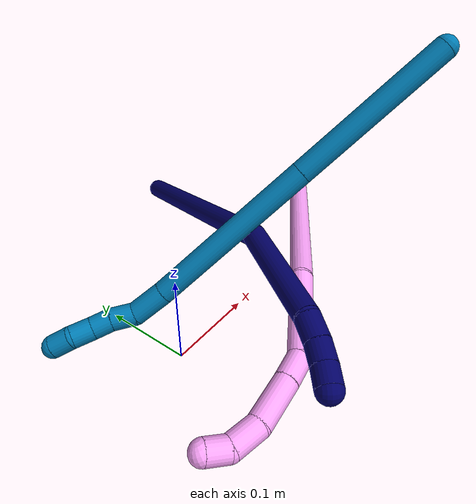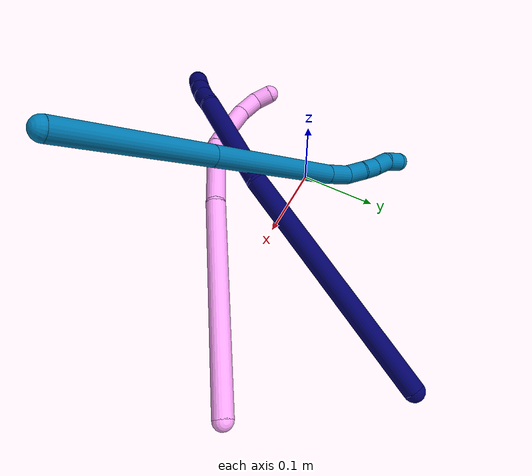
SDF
<sdf version="1.7">
 <world name="default">
  <model name="4">
   <static>0</static>
   <link name="4">
    <collision name="collision-cylinder-e_1_1_4">
     <pose>-0.102694 -0.076394 -0.025131 1.88861 -0.90643 -1.18464</pose>
     <geometry><cylinder><radius>0.0125</radius><length>0.260873</length></cylinder></geometry>
     <surface>
      <friction><ode><mu>1.16</mu><mu2>1.16</mu2><slip1>0</slip1><slip2>0</slip2></ode></friction>
      <contact><ode><kp>1e+06</kp><kd>1</kd><max_vel>0</max_vel><min_depth>0.001</min_depth></ode></contact>
     </surface>
    </collision>
    <visual name="visual-cylinder-e_1_1_4">
     <pose>-0.102694 -0.076394 -0.025131 1.88861 -0.90643 -1.18464</pose>
     <geometry><cylinder><radius>0.0125</radius><length>0.260873</length></cylinder></geometry>
     <material><ambient>1 0.65098 0.996078 1</ambient></material>
    </visual>
    <collision name="collision-cylinder-e_2_4_5">
     <pose>-0.247222 -0.175712 -0.07162 2.32087 -0.927978 -1.71031</pose>
     <geometry><cylinder><radius>0.0125</radius><length>0.104533</length></cylinder></geometry>
     <surface>
      <friction><ode><mu>1.16</mu><mu2>1.16</mu2><slip1>0</slip1><slip2>0</slip2></ode></friction>
      <contact><ode><kp>1e+06</kp><kd>1</kd><max_vel>0</max_vel><min_depth>0.001</min_depth></ode></contact>
     </surface>
    </collision>
    <visual name="visual-cylinder-e_2_4_5">
     <pose>-0.247222 -0.175712 -0.07162 2.32087 -0.927978 -1.71031</pose>
     <geometry><cylinder><radius>0.0125</radius><length>0.104533</length></cylinder></geometry>
     <material><ambient>1 0.65098 0.996078 1</ambient></material>
    </visual>
    <collision name="collision-cylinder-e_3_5_6">
     <pose>-0.302933 -0.199821 -0.096602 2.82529 -1.30267 -2.72912</pose>
     <geometry><cylinder><radius>0.0125</radius><length>0.028781</length></cylinder></geometry>
     <surface>
      <friction><ode><mu>1.16</mu><mu2>1.16</mu2><slip1>0</slip1><slip2>0</slip2></ode></friction>
      <contact><ode><kp>1e+06</kp><kd>1</kd><max_vel>0</max_vel><min_depth>0.001</min_depth></ode></contact>
     </surface>
    </collision>
    <visual name="visual-cylinder-e_3_5_6">
     <pose>-0.302933 -0.199821 -0.096602 2.82529 -1.30267 -2.72912</pose>
     <geometry><cylinder><radius>0.0125</radius><length>0.028781</length></cylinder></geometry>
     <material><ambient>1 0.65098 0.996078 1</ambient></material>
    </visual>
    <collision name="collision-cylinder-e_4_6_7">
     <pose>-0.341037 -0.202117 -0.105768 2.94404 -1.34159 -2.89312</pose>
     <geometry><cylinder><radius>0.0125</radius><length>0.049758</length></cylinder></geometry>
     <surface>
      <friction><ode><mu>1.16</mu><mu2>1.16</mu2><slip1>0</slip1><slip2>0</slip2></ode></friction>
      <contact><ode><kp>1e+06</kp><kd>1</kd><max_vel>0</max_vel><min_depth>0.001</min_depth></ode></contact>
     </surface>
    </collision>
    <visual name="visual-cylinder-e_4_6_7">
     <pose>-0.341037 -0.202117 -0.105768 2.94404 -1.34159 -2.89312</pose>
     <geometry><cylinder><radius>0.0125</radius><length>0.049758</length></cylinder></geometry>
     <material><ambient>1 0.65098 0.996078 1</ambient></material>
    </visual>
    <collision name="collision-cylinder-e_5_7_8">
     <pose>-0.381574 -0.201414 -0.110775 -1.28359 -1.45546 1.17474</pose>
     <geometry><cylinder><radius>0.0125</radius><length>0.032834</length></cylinder></geometry>
     <surface>
      <friction><ode><mu>1.16</mu><mu2>1.16</mu2><slip1>0</slip1><slip2>0</slip2></ode></friction>
      <contact><ode><kp>1e+06</kp><kd>1</kd><max_vel>0</max_vel><min_depth>0.001</min_depth></ode></contact>
     </surface>
    </collision>
    <visual name="visual-cylinder-e_5_7_8">
     <pose>-0.381574 -0.201414 -0.110775 -1.28359 -1.45546 1.17474</pose>
     <geometry><cylinder><radius>0.0125</radius><length>0.032834</length></cylinder></geometry>
     <material><ambient>1 0.65098 0.996078 1</ambient></material>
    </visual>
    <collision name="collision-cylinder-e_6_8_2">
     <pose>-0.407545 -0.195677 -0.105139 -0.655834 -0.983149 0.360343</pose>
     <geometry><cylinder><radius>0.0125</radius><length>0.023221</length></cylinder></geometry>
     <surface>
      <friction><ode><mu>1.16</mu><mu2>1.16</mu2><slip1>0</slip1><slip2>0</slip2></ode></friction>
      <contact><ode><kp>1e+06</kp><kd>1</kd><max_vel>0</max_vel><min_depth>0.001</min_depth></ode></contact>
     </surface>
    </collision>
    <visual name="visual-cylinder-e_6_8_2">
     <pose>-0.407545 -0.195677 -0.105139 -0.655834 -0.983149 0.360343</pose>
     <geometry><cylinder><radius>0.0125</radius><length>0.023221</length></cylinder></geometry>
     <material><ambient>1 0.65098 0.996078 1</ambient></material>
    </visual>
    <collision name="collision-sphere-2">
     <pose>-0.417207 -0.191752 -0.100037 0 -0 0</pose>
     <geometry><sphere><radius>0.0125</radius></sphere></geometry>
     <surface>
      <friction><ode><mu>1.16</mu><mu2>1.16</mu2><slip1>0</slip1><slip2>0</slip2></ode></friction>
      <contact><ode><kp>1e+06</kp><kd>1</kd><max_vel>0</max_vel><min_depth>0.001</min_depth></ode></contact>
     </surface>
    </collision>
    <visual name="visual-sphere-2">
     <pose>-0.417207 -0.191752 -0.100037 0 -0 0</pose>
     <geometry><sphere><radius>0.0125</radius></sphere></geometry>
     <material><ambient>1 0.65098 0.996078 1</ambient></material>
    </visual>
    <collision name="collision-sphere-4">
     <pose>-0.205387 -0.152789 -0.050262 0 -0 0</pose>
     <geometry><sphere><radius>0.0125</radius></sphere></geometry>
     <surface>
      <friction><ode><mu>1.16</mu><mu2>1.16</mu2><slip1>0</slip1><slip2>0</slip2></ode></friction>
      <contact><ode><kp>1e+06</kp><kd>1</kd><max_vel>0</max_vel><min_depth>0.001</min_depth></ode></contact>
     </surface>
    </collision>
    <visual name="visual-sphere-4">
     <pose>-0.205387 -0.152789 -0.050262 0 -0 0</pose>
     <geometry><sphere><radius>0.0125</radius></sphere></geometry>
     <material><ambient>1 0.65098 0.996078 1</ambient></material>
    </visual>
    <collision name="collision-sphere-1">
     <geometry><sphere><radius>0.0125</radius></sphere></geometry>
     <surface>
      <friction><ode><mu>1.16</mu><mu2>1.16</mu2><slip1>0</slip1><slip2>0</slip2></ode></friction>
      <contact><ode><kp>1e+06</kp><kd>1</kd><max_vel>0</max_vel><min_depth>0.001</min_depth></ode></contact>
     </surface>
    </collision>
    <visual name="visual-sphere-1">
     <geometry><sphere><radius>0.0125</radius></sphere></geometry>
     <material><ambient>1 0.65098 0.996078 1</ambient></material>
    </visual>
    <collision name="collision-sphere-8">
     <pose>-0.397882 -0.199602 -0.11024 0 -0 0</pose>
     <geometry><sphere><radius>0.0125</radius></sphere></geometry>
     <surface>
      <friction><ode><mu>1.16</mu><mu2>1.16</mu2><slip1>0</slip1><slip2>0</slip2></ode></friction>
      <contact><ode><kp>1e+06</kp><kd>1</kd><max_vel>0</max_vel><min_depth>0.001</min_depth></ode></contact>
     </surface>
    </collision>
    <visual name="visual-sphere-8">
     <pose>-0.397882 -0.199602 -0.11024 0 -0 0</pose>
     <geometry><sphere><radius>0.0125</radius></sphere></geometry>
     <material><ambient>1 0.65098 0.996078 1</ambient></material>
    </visual>
    <collision name="collision-sphere-5">
     <pose>-0.289057 -0.198636 -0.092979 0 -0 0</pose>
     <geometry><sphere><radius>0.0125</radius></sphere></geometry>
     <surface>
      <friction><ode><mu>1.16</mu><mu2>1.16</mu2><slip1>0</slip1><slip2>0</slip2></ode></friction>
      <contact><ode><kp>1e+06</kp><kd>1</kd><max_vel>0</max_vel><min_depth>0.001</min_depth></ode></contact>
     </surface>
    </collision>
    <visual name="visual-sphere-5">
     <pose>-0.289057 -0.198636 -0.092979 0 -0 0</pose>
     <geometry><sphere><radius>0.0125</radius></sphere></geometry>
     <material><ambient>1 0.65098 0.996078 1</ambient></material>
    </visual>
    <collision name="collision-sphere-6">
     <pose>-0.316809 -0.201007 -0.100225 0 -0 0</pose>
     <geometry><sphere><radius>0.0125</radius></sphere></geometry>
     <surface>
      <friction><ode><mu>1.16</mu><mu2>1.16</mu2><slip1>0</slip1><slip2>0</slip2></ode></friction>
      <contact><ode><kp>1e+06</kp><kd>1</kd><max_vel>0</max_vel><min_depth>0.001</min_depth></ode></contact>
     </surface>
    </collision>
    <visual name="visual-sphere-6">
     <pose>-0.316809 -0.201007 -0.100225 0 -0 0</pose>
     <geometry><sphere><radius>0.0125</radius></sphere></geometry>
     <material><ambient>1 0.65098 0.996078 1</ambient></material>
    </visual>
    <collision name="collision-sphere-7">
     <pose>-0.365266 -0.203226 -0.11131 0 -0 0</pose>
     <geometry><sphere><radius>0.0125</radius></sphere></geometry>
     <surface>
      <friction><ode><mu>1.16</mu><mu2>1.16</mu2><slip1>0</slip1><slip2>0</slip2></ode></friction>
      <contact><ode><kp>1e+06</kp><kd>1</kd><max_vel>0</max_vel><min_depth>0.001</min_depth></ode></contact>
     </surface>
    </collision>
    <visual name="visual-sphere-7">
     <pose>-0.365266 -0.203226 -0.11131 0 -0 0</pose>
     <geometry><sphere><radius>0.0125</radius></sphere></geometry>
     <material><ambient>1 0.65098 0.996078 1</ambient></material>
    </visual>
    <inertial>
     <pose>-0.200626 -0.130524 -0.056329 0 -0 0</pose>
     <mass>0.5</mass>
     <inertia><ixx>-0.000607</ixx><ixy>0</ixy><ixz>0</ixz><iyy>2e-05</iyy><iyz>0</iyz><izz>0.002181</izz></inertia>
    </inertial>
   </link>
   <pose>0.345601 0.071139 0.011499 -0.568103 0.011831 -0.091515</pose>
  </model>
  <model name="7">
   <static>0</static>
   <link name="7">
    <collision name="collision-cylinder-e_1_1_4">
     <pose>-0.103163 -0.088164 -0.062091 2.18439 -0.763266 -1.31671</pose>
     <geometry><cylinder><radius>0.0125</radius><length>0.298468</length></cylinder></geometry>
     <surface>
      <friction><ode><mu>1.16</mu><mu2>1.16</mu2><slip1>0</slip1><slip2>0</slip2></ode></friction>
      <contact><ode><kp>1e+06</kp><kd>1</kd><max_vel>0</max_vel><min_depth>0.001</min_depth></ode></contact>
     </surface>
    </collision>
    <visual name="visual-cylinder-e_1_1_4">
     <pose>-0.103163 -0.088164 -0.062091 2.18439 -0.763266 -1.31671</pose>
     <geometry><cylinder><radius>0.0125</radius><length>0.298468</length></cylinder></geometry>
     <material><ambient>0.003922 0 0.403922 1</ambient></material>
    </visual>
    <collision name="collision-cylinder-e_2_4_5">
     <pose>-0.265646 -0.202233 -0.141569 2.16189 -1.0866 -1.69504</pose>
     <geometry><cylinder><radius>0.0125</radius><length>0.134048</length></cylinder></geometry>
     <surface>
      <friction><ode><mu>1.16</mu><mu2>1.16</mu2><slip1>0</slip1><slip2>0</slip2></ode></friction>
      <contact><ode><kp>1e+06</kp><kd>1</kd><max_vel>0</max_vel><min_depth>0.001</min_depth></ode></contact>
     </surface>
    </collision>
    <visual name="visual-cylinder-e_2_4_5">
     <pose>-0.265646 -0.202233 -0.141569 2.16189 -1.0866 -1.69504</pose>
     <geometry><cylinder><radius>0.0125</radius><length>0.134048</length></cylinder></geometry>
     <material><ambient>0.003922 0 0.403922 1</ambient></material>
    </visual>
    <collision name="collision-cylinder-e_3_5_6">
     <pose>-0.337399 -0.229332 -0.1617 2.73163 -1.33461 -2.6256</pose>
     <geometry><cylinder><radius>0.0125</radius><length>0.025576</length></cylinder></geometry>
     <surface>
      <friction><ode><mu>1.16</mu><mu2>1.16</mu2><slip1>0</slip1><slip2>0</slip2></ode></friction>
      <contact><ode><kp>1e+06</kp><kd>1</kd><max_vel>0</max_vel><min_depth>0.001</min_depth></ode></contact>
     </surface>
    </collision>
    <visual name="visual-cylinder-e_3_5_6">
     <pose>-0.337399 -0.229332 -0.1617 2.73163 -1.33461 -2.6256</pose>
     <geometry><cylinder><radius>0.0125</radius><length>0.025576</length></cylinder></geometry>
     <material><ambient>0.003922 0 0.403922 1</ambient></material>
    </visual>
    <collision name="collision-cylinder-e_4_6_7">
     <pose>-0.360565 -0.231706 -0.16553 2.31371 -1.42239 -2.19854</pose>
     <geometry><cylinder><radius>0.0125</radius><length>0.021705</length></cylinder></geometry>
     <surface>
      <friction><ode><mu>1.16</mu><mu2>1.16</mu2><slip1>0</slip1><slip2>0</slip2></ode></friction>
      <contact><ode><kp>1e+06</kp><kd>1</kd><max_vel>0</max_vel><min_depth>0.001</min_depth></ode></contact>
     </surface>
    </collision>
    <visual name="visual-cylinder-e_4_6_7">
     <pose>-0.360565 -0.231706 -0.16553 2.31371 -1.42239 -2.19854</pose>
     <geometry><cylinder><radius>0.0125</radius><length>0.021705</length></cylinder></geometry>
     <material><ambient>0.003922 0 0.403922 1</ambient></material>
    </visual>
    <collision name="collision-cylinder-e_5_7_2">
     <pose>-0.381299 -0.234291 -0.166853 1.73792 -1.4295 -1.59693</pose>
     <geometry><cylinder><radius>0.0125</radius><length>0.020203</length></cylinder></geometry>
     <surface>
      <friction><ode><mu>1.16</mu><mu2>1.16</mu2><slip1>0</slip1><slip2>0</slip2></ode></friction>
      <contact><ode><kp>1e+06</kp><kd>1</kd><max_vel>0</max_vel><min_depth>0.001</min_depth></ode></contact>
     </surface>
    </collision>
    <visual name="visual-cylinder-e_5_7_2">
     <pose>-0.381299 -0.234291 -0.166853 1.73792 -1.4295 -1.59693</pose>
     <geometry><cylinder><radius>0.0125</radius><length>0.020203</length></cylinder></geometry>
     <material><ambient>0.003922 0 0.403922 1</ambient></material>
    </visual>
    <collision name="collision-sphere-2">
     <pose>-0.391299 -0.235693 -0.167089 0 -0 0</pose>
     <geometry><sphere><radius>0.0125</radius></sphere></geometry>
     <surface>
      <friction><ode><mu>1.16</mu><mu2>1.16</mu2><slip1>0</slip1><slip2>0</slip2></ode></friction>
      <contact><ode><kp>1e+06</kp><kd>1</kd><max_vel>0</max_vel><min_depth>0.001</min_depth></ode></contact>
     </surface>
    </collision>
    <visual name="visual-sphere-2">
     <pose>-0.391299 -0.235693 -0.167089 0 -0 0</pose>
     <geometry><sphere><radius>0.0125</radius></sphere></geometry>
     <material><ambient>0.003922 0 0.403922 1</ambient></material>
    </visual>
    <collision name="collision-sphere-7">
     <pose>-0.371298 -0.232888 -0.166616 0 -0 0</pose>
     <geometry><sphere><radius>0.0125</radius></sphere></geometry>
     <surface>
      <friction><ode><mu>1.16</mu><mu2>1.16</mu2><slip1>0</slip1><slip2>0</slip2></ode></friction>
      <contact><ode><kp>1e+06</kp><kd>1</kd><max_vel>0</max_vel><min_depth>0.001</min_depth></ode></contact>
     </surface>
    </collision>
    <visual name="visual-sphere-7">
     <pose>-0.371298 -0.232888 -0.166616 0 -0 0</pose>
     <geometry><sphere><radius>0.0125</radius></sphere></geometry>
     <material><ambient>0.003922 0 0.403922 1</ambient></material>
    </visual>
    <collision name="collision-sphere-6">
     <pose>-0.349832 -0.230524 -0.164445 0 -0 0</pose>
     <geometry><sphere><radius>0.0125</radius></sphere></geometry>
     <surface>
      <friction><ode><mu>1.16</mu><mu2>1.16</mu2><slip1>0</slip1><slip2>0</slip2></ode></friction>
      <contact><ode><kp>1e+06</kp><kd>1</kd><max_vel>0</max_vel><min_depth>0.001</min_depth></ode></contact>
     </surface>
    </collision>
    <visual name="visual-sphere-6">
     <pose>-0.349832 -0.230524 -0.164445 0 -0 0</pose>
     <geometry><sphere><radius>0.0125</radius></sphere></geometry>
     <material><ambient>0.003922 0 0.403922 1</ambient></material>
    </visual>
    <collision name="collision-sphere-5">
     <pose>-0.324966 -0.228139 -0.158956 0 -0 0</pose>
     <geometry><sphere><radius>0.0125</radius></sphere></geometry>
     <surface>
      <friction><ode><mu>1.16</mu><mu2>1.16</mu2><slip1>0</slip1><slip2>0</slip2></ode></friction>
      <contact><ode><kp>1e+06</kp><kd>1</kd><max_vel>0</max_vel><min_depth>0.001</min_depth></ode></contact>
     </surface>
    </collision>
    <visual name="visual-sphere-5">
     <pose>-0.324966 -0.228139 -0.158956 0 -0 0</pose>
     <geometry><sphere><radius>0.0125</radius></sphere></geometry>
     <material><ambient>0.003922 0 0.403922 1</ambient></material>
    </visual>
    <collision name="collision-sphere-1">
     <geometry><sphere><radius>0.0125</radius></sphere></geometry>
     <surface>
      <friction><ode><mu>1.16</mu><mu2>1.16</mu2><slip1>0</slip1><slip2>0</slip2></ode></friction>
      <contact><ode><kp>1e+06</kp><kd>1</kd><max_vel>0</max_vel><min_depth>0.001</min_depth></ode></contact>
     </surface>
    </collision>
    <visual name="visual-sphere-1">
     <geometry><sphere><radius>0.0125</radius></sphere></geometry>
     <material><ambient>0.003922 0 0.403922 1</ambient></material>
    </visual>
    <collision name="collision-sphere-4">
     <pose>-0.206327 -0.176327 -0.124183 0 -0 0</pose>
     <geometry><sphere><radius>0.0125</radius></sphere></geometry>
     <surface>
      <friction><ode><mu>1.16</mu><mu2>1.16</mu2><slip1>0</slip1><slip2>0</slip2></ode></friction>
      <contact><ode><kp>1e+06</kp><kd>1</kd><max_vel>0</max_vel><min_depth>0.001</min_depth></ode></contact>
     </surface>
    </collision>
    <visual name="visual-sphere-4">
     <pose>-0.206327 -0.176327 -0.124183 0 -0 0</pose>
     <geometry><sphere><radius>0.0125</radius></sphere></geometry>
     <material><ambient>0.003922 0 0.403922 1</ambient></material>
    </visual>
    <inertial>
     <pose>-0.181118 -0.138102 -0.097218 0 -0 0</pose>
     <mass>0.5</mass>
     <inertia>
      <ixx>-0.001292</ixx>
      <ixy>0</ixy>
      <ixz>0</ixz>
      <iyy>-0.000606</iyy>
      <iyz>0</iyz>
      <izz>0.003111</izz>
     </inertia>
    </inertial>
   </link>
   <pose>0.220104 0.242453 0.011498 -1.58063 -0.369304 0.707524</pose>
  </model>
  <model name="9">
   <static>0</static>
   <link name="9">
    <collision name="collision-cylinder-e_1_1_4">
     <pose>-0.003871 0.016552 -0.088529 -2.95676 -0.042952 0.455467</pose>
     <geometry><cylinder><radius>0.0125</radius><length>0.180291</length></cylinder></geometry>
     <surface>
      <friction><ode><mu>1.16</mu><mu2>1.16</mu2><slip1>0</slip1><slip2>0</slip2></ode></friction>
      <contact><ode><kp>1e+06</kp><kd>1</kd><max_vel>0</max_vel><min_depth>0.001</min_depth></ode></contact>
     </surface>
    </collision>
    <visual name="visual-cylinder-e_1_1_4">
     <pose>-0.003871 0.016552 -0.088529 -2.95676 -0.042952 0.455467</pose>
     <geometry><cylinder><radius>0.0125</radius><length>0.180291</length></cylinder></geometry>
     <material><ambient>0 0.490196 0.709804 1</ambient></material>
    </visual>
    <collision name="collision-cylinder-e_2_4_5">
     <pose>-0.01177 0.050709 -0.270453 -2.95528 -0.042358 0.445914</pose>
     <geometry><cylinder><radius>0.0125</radius><length>0.190252</length></cylinder></geometry>
     <surface>
      <friction><ode><mu>1.16</mu><mu2>1.16</mu2><slip1>0</slip1><slip2>0</slip2></ode></friction>
      <contact><ode><kp>1e+06</kp><kd>1</kd><max_vel>0</max_vel><min_depth>0.001</min_depth></ode></contact>
     </surface>
    </collision>
    <visual name="visual-cylinder-e_2_4_5">
     <pose>-0.01177 0.050709 -0.270453 -2.95528 -0.042358 0.445914</pose>
     <geometry><cylinder><radius>0.0125</radius><length>0.190252</length></cylinder></geometry>
     <material><ambient>0 0.490196 0.709804 1</ambient></material>
    </visual>
    <collision name="collision-cylinder-e_3_5_6">
     <pose>-0.018134 0.072542 -0.382433 -2.91787 -0.121957 0.995717</pose>
     <geometry><cylinder><radius>0.0125</radius><length>0.038402</length></cylinder></geometry>
     <surface>
      <friction><ode><mu>1.16</mu><mu2>1.16</mu2><slip1>0</slip1><slip2>0</slip2></ode></friction>
      <contact><ode><kp>1e+06</kp><kd>1</kd><max_vel>0</max_vel><min_depth>0.001</min_depth></ode></contact>
     </surface>
    </collision>
    <visual name="visual-cylinder-e_3_5_6">
     <pose>-0.018134 0.072542 -0.382433 -2.91787 -0.121957 0.995717</pose>
     <geometry><cylinder><radius>0.0125</radius><length>0.038402</length></cylinder></geometry>
     <material><ambient>0 0.490196 0.709804 1</ambient></material>
    </visual>
    <collision name="collision-cylinder-e_4_6_7">
     <pose>-0.026026 0.083254 -0.410567 -2.54521 -0.44867 1.27723</pose>
     <geometry><cylinder><radius>0.0125</radius><length>0.025621</length></cylinder></geometry>
     <surface>
      <friction><ode><mu>1.16</mu><mu2>1.16</mu2><slip1>0</slip1><slip2>0</slip2></ode></friction>
      <contact><ode><kp>1e+06</kp><kd>1</kd><max_vel>0</max_vel><min_depth>0.001</min_depth></ode></contact>
     </surface>
    </collision>
    <visual name="visual-cylinder-e_4_6_7">
     <pose>-0.026026 0.083254 -0.410567 -2.54521 -0.44867 1.27723</pose>
     <geometry><cylinder><radius>0.0125</radius><length>0.025621</length></cylinder></geometry>
     <material><ambient>0 0.490196 0.709804 1</ambient></material>
    </visual>
    <collision name="collision-cylinder-e_5_7_8">
     <pose>-0.035754 0.093256 -0.429006 -2.76457 -0.411397 1.66024</pose>
     <geometry><cylinder><radius>0.0125</radius><length>0.020861</length></cylinder></geometry>
     <surface>
      <friction><ode><mu>1.16</mu><mu2>1.16</mu2><slip1>0</slip1><slip2>0</slip2></ode></friction>
      <contact><ode><kp>1e+06</kp><kd>1</kd><max_vel>0</max_vel><min_depth>0.001</min_depth></ode></contact>
     </surface>
    </collision>
    <visual name="visual-cylinder-e_5_7_8">
     <pose>-0.035754 0.093256 -0.429006 -2.76457 -0.411397 1.66024</pose>
     <geometry><cylinder><radius>0.0125</radius><length>0.020861</length></cylinder></geometry>
     <material><ambient>0 0.490196 0.709804 1</ambient></material>
    </visual>
    <collision name="collision-cylinder-e_6_8_9">
     <pose>-0.045895 0.100336 -0.446893 -2.76482 -0.552714 1.95793</pose>
     <geometry><cylinder><radius>0.0125</radius><length>0.022742</length></cylinder></geometry>
     <surface>
      <friction><ode><mu>1.16</mu><mu2>1.16</mu2><slip1>0</slip1><slip2>0</slip2></ode></friction>
      <contact><ode><kp>1e+06</kp><kd>1</kd><max_vel>0</max_vel><min_depth>0.001</min_depth></ode></contact>
     </surface>
    </collision>
    <visual name="visual-cylinder-e_6_8_9">
     <pose>-0.045895 0.100336 -0.446893 -2.76482 -0.552714 1.95793</pose>
     <geometry><cylinder><radius>0.0125</radius><length>0.022742</length></cylinder></geometry>
     <material><ambient>0 0.490196 0.709804 1</ambient></material>
    </visual>
    <collision name="collision-cylinder-e_7_9_2">
     <pose>-0.053623 0.108087 -0.465816 -2.74212 -0.161805 0.761903</pose>
     <geometry><cylinder><radius>0.0125</radius><length>0.02183</length></cylinder></geometry>
     <surface>
      <friction><ode><mu>1.16</mu><mu2>1.16</mu2><slip1>0</slip1><slip2>0</slip2></ode></friction>
      <contact><ode><kp>1e+06</kp><kd>1</kd><max_vel>0</max_vel><min_depth>0.001</min_depth></ode></contact>
     </surface>
    </collision>
    <visual name="visual-cylinder-e_7_9_2">
     <pose>-0.053623 0.108087 -0.465816 -2.74212 -0.161805 0.761903</pose>
     <geometry><cylinder><radius>0.0125</radius><length>0.02183</length></cylinder></geometry>
     <material><ambient>0 0.490196 0.709804 1</ambient></material>
    </visual>
    <collision name="collision-sphere-2">
     <pose>-0.055382 0.112277 -0.475741 0 -0 0</pose>
     <geometry><sphere><radius>0.0125</radius></sphere></geometry>
     <surface>
      <friction><ode><mu>1.16</mu><mu2>1.16</mu2><slip1>0</slip1><slip2>0</slip2></ode></friction>
      <contact><ode><kp>1e+06</kp><kd>1</kd><max_vel>0</max_vel><min_depth>0.001</min_depth></ode></contact>
     </surface>
    </collision>
    <visual name="visual-sphere-2">
     <pose>-0.055382 0.112277 -0.475741 0 -0 0</pose>
     <geometry><sphere><radius>0.0125</radius></sphere></geometry>
     <material><ambient>0 0.490196 0.709804 1</ambient></material>
    </visual>
    <collision name="collision-sphere-9">
     <pose>-0.051865 0.103897 -0.455892 0 -0 0</pose>
     <geometry><sphere><radius>0.0125</radius></sphere></geometry>
     <surface>
      <friction><ode><mu>1.16</mu><mu2>1.16</mu2><slip1>0</slip1><slip2>0</slip2></ode></friction>
      <contact><ode><kp>1e+06</kp><kd>1</kd><max_vel>0</max_vel><min_depth>0.001</min_depth></ode></contact>
     </surface>
    </collision>
    <visual name="visual-sphere-9">
     <pose>-0.051865 0.103897 -0.455892 0 -0 0</pose>
     <geometry><sphere><radius>0.0125</radius></sphere></geometry>
     <material><ambient>0 0.490196 0.709804 1</ambient></material>
    </visual>
    <collision name="collision-sphere-4">
     <pose>-0.007741 0.033104 -0.177057 0 -0 0</pose>
     <geometry><sphere><radius>0.0125</radius></sphere></geometry>
     <surface>
      <friction><ode><mu>1.16</mu><mu2>1.16</mu2><slip1>0</slip1><slip2>0</slip2></ode></friction>
      <contact><ode><kp>1e+06</kp><kd>1</kd><max_vel>0</max_vel><min_depth>0.001</min_depth></ode></contact>
     </surface>
    </collision>
    <visual name="visual-sphere-4">
     <pose>-0.007741 0.033104 -0.177057 0 -0 0</pose>
     <geometry><sphere><radius>0.0125</radius></sphere></geometry>
     <material><ambient>0 0.490196 0.709804 1</ambient></material>
    </visual>
    <collision name="collision-sphere-1">
     <geometry><sphere><radius>0.0125</radius></sphere></geometry>
     <surface>
      <friction><ode><mu>1.16</mu><mu2>1.16</mu2><slip1>0</slip1><slip2>0</slip2></ode></friction>
      <contact><ode><kp>1e+06</kp><kd>1</kd><max_vel>0</max_vel><min_depth>0.001</min_depth></ode></contact>
     </surface>
    </collision>
    <visual name="visual-sphere-1">
     <geometry><sphere><radius>0.0125</radius></sphere></geometry>
     <material><ambient>0 0.490196 0.709804 1</ambient></material>
    </visual>
    <collision name="collision-sphere-8">
     <pose>-0.039925 0.096776 -0.437895 0 -0 0</pose>
     <geometry><sphere><radius>0.0125</radius></sphere></geometry>
     <surface>
      <friction><ode><mu>1.16</mu><mu2>1.16</mu2><slip1>0</slip1><slip2>0</slip2></ode></friction>
      <contact><ode><kp>1e+06</kp><kd>1</kd><max_vel>0</max_vel><min_depth>0.001</min_depth></ode></contact>
     </surface>
    </collision>
    <visual name="visual-sphere-8">
     <pose>-0.039925 0.096776 -0.437895 0 -0 0</pose>
     <geometry><sphere><radius>0.0125</radius></sphere></geometry>
     <material><ambient>0 0.490196 0.709804 1</ambient></material>
    </visual>
    <collision name="collision-sphere-5">
     <pose>-0.015798 0.068314 -0.363849 0 -0 0</pose>
     <geometry><sphere><radius>0.0125</radius></sphere></geometry>
     <surface>
      <friction><ode><mu>1.16</mu><mu2>1.16</mu2><slip1>0</slip1><slip2>0</slip2></ode></friction>
      <contact><ode><kp>1e+06</kp><kd>1</kd><max_vel>0</max_vel><min_depth>0.001</min_depth></ode></contact>
     </surface>
    </collision>
    <visual name="visual-sphere-5">
     <pose>-0.015798 0.068314 -0.363849 0 -0 0</pose>
     <geometry><sphere><radius>0.0125</radius></sphere></geometry>
     <material><ambient>0 0.490196 0.709804 1</ambient></material>
    </visual>
    <collision name="collision-sphere-6">
     <pose>-0.02047 0.076771 -0.401016 0 -0 0</pose>
     <geometry><sphere><radius>0.0125</radius></sphere></geometry>
     <surface>
      <friction><ode><mu>1.16</mu><mu2>1.16</mu2><slip1>0</slip1><slip2>0</slip2></ode></friction>
      <contact><ode><kp>1e+06</kp><kd>1</kd><max_vel>0</max_vel><min_depth>0.001</min_depth></ode></contact>
     </surface>
    </collision>
    <visual name="visual-sphere-6">
     <pose>-0.02047 0.076771 -0.401016 0 -0 0</pose>
     <geometry><sphere><radius>0.0125</radius></sphere></geometry>
     <material><ambient>0 0.490196 0.709804 1</ambient></material>
    </visual>
    <collision name="collision-sphere-7">
     <pose>-0.031583 0.089736 -0.420117 0 -0 0</pose>
     <geometry><sphere><radius>0.0125</radius></sphere></geometry>
     <surface>
      <friction><ode><mu>1.16</mu><mu2>1.16</mu2><slip1>0</slip1><slip2>0</slip2></ode></friction>
      <contact><ode><kp>1e+06</kp><kd>1</kd><max_vel>0</max_vel><min_depth>0.001</min_depth></ode></contact>
     </surface>
    </collision>
    <visual name="visual-sphere-7">
     <pose>-0.031583 0.089736 -0.420117 0 -0 0</pose>
     <geometry><sphere><radius>0.0125</radius></sphere></geometry>
     <material><ambient>0 0.490196 0.709804 1</ambient></material>
    </visual>
    <inertial>
     <pose>-0.014521 0.048275 -0.243804 0 -0 0</pose>
     <mass>0.5</mass>
     <inertia>
      <ixx>0.001448</ixx>
      <ixy>0</ixy>
      <ixz>0</ixz>
      <iyy>-0.000464</iyy>
      <iyz>0</iyz>
      <izz>-0.00019</izz>
     </inertia>
    </inertial>
   </link>
   <pose>0.258074 -0.128724 0.282957 0.40227 0.679768 0.169688</pose>
  </model>
 </world>
</sdf>
